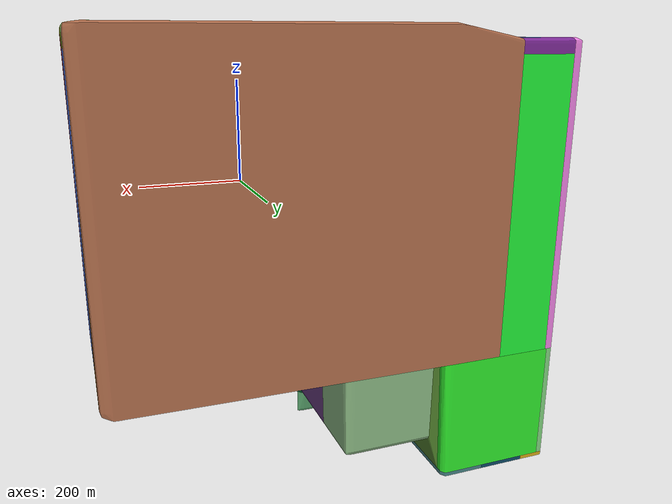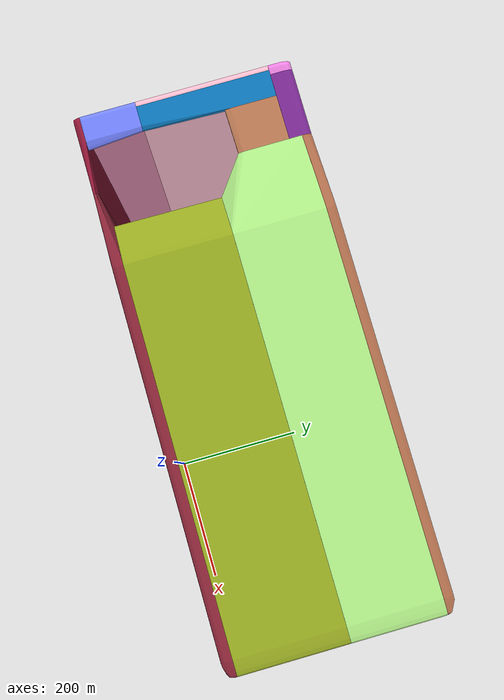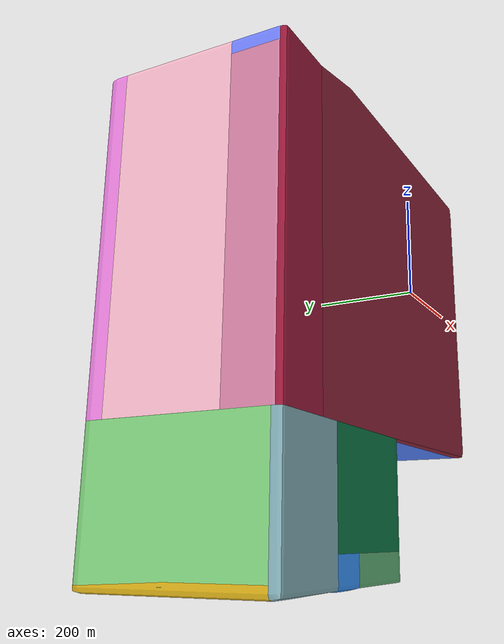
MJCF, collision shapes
<mujoco model="00259_Laboratory_no_subdiv">
  <default>
    <default class="visual">
      <geom group="2" type="mesh" contype="0" conaffinity="0"/>
    </default>
    <default class="collision">
      <geom group="3" type="mesh"/>
    </default>
  </default>
  <asset>
    <material name="wire_115115115" specular="0.3499999999999999" shininess="0.032" rgba="0.4510 0.4510 0.4510 1"/>
    <material name="wire_022022022" specular="0.3499999999999999" shininess="0.032" rgba="0.0863 0.0863 0.0863 1"/>
    <material name="wire_088199225" specular="0.3499999999999999" shininess="0.032" rgba="0.3451 0.7804 0.8824 1"/>
    <material name="wire_028089177" specular="0.3499999999999999" shininess="0.032" rgba="0.1098 0.3490 0.6941 1"/>
    <material name="wire_008008136" specular="0.3499999999999999" shininess="0.032" rgba="0.0314 0.0314 0.5333 1"/>
    <material name="wire_087225198" specular="0.3499999999999999" shininess="0.032" rgba="0.3412 0.8824 0.7765 1"/>
    <material name="wire_227153153" specular="0.3499999999999999" shininess="0.032" rgba="0.8902 0.6000 0.6000 1"/>
    <material name="wire_028028177" specular="0.3499999999999999" shininess="0.032" rgba="0.1098 0.1098 0.6941 1"/>
    <material name="wire_060135006" specular="0.3499999999999999" shininess="0.032" rgba="0.2353 0.5294 0.0235 1"/>
    <material name="wire_141007058" specular="0.3499999999999999" shininess="0.032" rgba="0.5529 0.0275 0.2275 1"/>
    <material name="wire_166229229" specular="0.3499999999999999" shininess="0.032" rgba="0.6510 0.8980 0.8980 1"/>
    <material name="wire_050062062" specular="0.3499999999999999" shininess="0.032" rgba="0.1961 0.2431 0.2431 1"/>
    <material name="wire_081072072" specular="0.3499999999999999" shininess="0.032" rgba="0.3176 0.2824 0.2824 1"/>
    <material name="wire_023020020" specular="0.3499999999999999" shininess="0.032" rgba="0.0902 0.0784 0.0784 1"/>
    <material name="wire_046043043" specular="0.3499999999999999" shininess="0.032" rgba="0.1804 0.1686 0.1686 1"/>
    <material name="wire_163105056" specular="0.3499999999999999" shininess="0.032" rgba="0.6392 0.4118 0.2196 1"/>
    <material name="wire_027177147" specular="0.3499999999999999" shininess="0.032" rgba="0.1059 0.6941 0.5765 1"/>
    <material name="wire_143225087" specular="0.3499999999999999" shininess="0.032" rgba="0.5608 0.8824 0.3412 1"/>
    <material name="wire_027177027" specular="0.3499999999999999" shininess="0.032" rgba="0.1059 0.6941 0.1059 1"/>
    <material name="wire_006135006" specular="0.3499999999999999" shininess="0.032" rgba="0.0235 0.5294 0.0235 1"/>
    <mesh file="00259_Laboratory_no_subdiv_0.obj"/>
    <mesh file="00259_Laboratory_no_subdiv_1.obj"/>
    <mesh file="00259_Laboratory_no_subdiv_2.obj"/>
    <mesh file="00259_Laboratory_no_subdiv_3.obj"/>
    <mesh file="00259_Laboratory_no_subdiv_4.obj"/>
    <mesh file="00259_Laboratory_no_subdiv_5.obj"/>
    <mesh file="00259_Laboratory_no_subdiv_6.obj"/>
    <mesh file="00259_Laboratory_no_subdiv_7.obj"/>
    <mesh file="00259_Laboratory_no_subdiv_8.obj"/>
    <mesh file="00259_Laboratory_no_subdiv_9.obj"/>
    <mesh file="00259_Laboratory_no_subdiv_10.obj"/>
    <mesh file="00259_Laboratory_no_subdiv_11.obj"/>
    <mesh file="00259_Laboratory_no_subdiv_12.obj"/>
    <mesh file="00259_Laboratory_no_subdiv_13.obj"/>
    <mesh file="00259_Laboratory_no_subdiv_14.obj"/>
    <mesh file="00259_Laboratory_no_subdiv_15.obj"/>
    <mesh file="00259_Laboratory_no_subdiv_16.obj"/>
    <mesh file="00259_Laboratory_no_subdiv_17.obj"/>
    <mesh file="00259_Laboratory_no_subdiv_18.obj"/>
    <mesh file="00259_Laboratory_no_subdiv_19.obj"/>
    <mesh file="00259_Laboratory_no_subdiv_collision_0.obj"/>
    <mesh file="00259_Laboratory_no_subdiv_collision_1.obj"/>
    <mesh file="00259_Laboratory_no_subdiv_collision_2.obj"/>
    <mesh file="00259_Laboratory_no_subdiv_collision_3.obj"/>
    <mesh file="00259_Laboratory_no_subdiv_collision_4.obj"/>
    <mesh file="00259_Laboratory_no_subdiv_collision_5.obj"/>
    <mesh file="00259_Laboratory_no_subdiv_collision_6.obj"/>
    <mesh file="00259_Laboratory_no_subdiv_collision_7.obj"/>
    <mesh file="00259_Laboratory_no_subdiv_collision_8.obj"/>
    <mesh file="00259_Laboratory_no_subdiv_collision_9.obj"/>
    <mesh file="00259_Laboratory_no_subdiv_collision_10.obj"/>
    <mesh file="00259_Laboratory_no_subdiv_collision_11.obj"/>
    <mesh file="00259_Laboratory_no_subdiv_collision_12.obj"/>
    <mesh file="00259_Laboratory_no_subdiv_collision_13.obj"/>
    <mesh file="00259_Laboratory_no_subdiv_collision_14.obj"/>
    <mesh file="00259_Laboratory_no_subdiv_collision_15.obj"/>
    <mesh file="00259_Laboratory_no_subdiv_collision_16.obj"/>
    <mesh file="00259_Laboratory_no_subdiv_collision_17.obj"/>
    <mesh file="00259_Laboratory_no_subdiv_collision_18.obj"/>
    <mesh file="00259_Laboratory_no_subdiv_collision_19.obj"/>
    <mesh file="00259_Laboratory_no_subdiv_collision_20.obj"/>
    <mesh file="00259_Laboratory_no_subdiv_collision_21.obj"/>
    <mesh file="00259_Laboratory_no_subdiv_collision_22.obj"/>
    <mesh file="00259_Laboratory_no_subdiv_collision_23.obj"/>
    <mesh file="00259_Laboratory_no_subdiv_collision_24.obj"/>
    <mesh file="00259_Laboratory_no_subdiv_collision_25.obj"/>
    <mesh file="00259_Laboratory_no_subdiv_collision_26.obj"/>
    <mesh file="00259_Laboratory_no_subdiv_collision_27.obj"/>
    <mesh file="00259_Laboratory_no_subdiv_collision_28.obj"/>
  </asset>
  <worldbody>
    <body name="00259_Laboratory_no_subdiv">
      <geom mesh="00259_Laboratory_no_subdiv_0" material="wire_006135006" class="visual"/>
      <geom mesh="00259_Laboratory_no_subdiv_1" material="wire_027177027" class="visual"/>
      <geom mesh="00259_Laboratory_no_subdiv_2" material="wire_143225087" class="visual"/>
      <geom mesh="00259_Laboratory_no_subdiv_3" material="wire_027177147" class="visual"/>
      <geom mesh="00259_Laboratory_no_subdiv_4" material="wire_163105056" class="visual"/>
      <geom mesh="00259_Laboratory_no_subdiv_5" material="wire_046043043" class="visual"/>
      <geom mesh="00259_Laboratory_no_subdiv_6" material="wire_023020020" class="visual"/>
      <geom mesh="00259_Laboratory_no_subdiv_7" material="wire_081072072" class="visual"/>
      <geom mesh="00259_Laboratory_no_subdiv_8" material="wire_050062062" class="visual"/>
      <geom mesh="00259_Laboratory_no_subdiv_9" material="wire_166229229" class="visual"/>
      <geom mesh="00259_Laboratory_no_subdiv_10" material="wire_141007058" class="visual"/>
      <geom mesh="00259_Laboratory_no_subdiv_11" material="wire_060135006" class="visual"/>
      <geom mesh="00259_Laboratory_no_subdiv_12" material="wire_028028177" class="visual"/>
      <geom mesh="00259_Laboratory_no_subdiv_13" material="wire_227153153" class="visual"/>
      <geom mesh="00259_Laboratory_no_subdiv_14" material="wire_087225198" class="visual"/>
      <geom mesh="00259_Laboratory_no_subdiv_15" material="wire_008008136" class="visual"/>
      <geom mesh="00259_Laboratory_no_subdiv_16" material="wire_028089177" class="visual"/>
      <geom mesh="00259_Laboratory_no_subdiv_17" material="wire_088199225" class="visual"/>
      <geom mesh="00259_Laboratory_no_subdiv_18" material="wire_022022022" class="visual"/>
      <geom mesh="00259_Laboratory_no_subdiv_19" material="wire_115115115" class="visual"/>
      <geom mesh="00259_Laboratory_no_subdiv_collision_0" rgba="0.483711950935506 0.6467891535552951 0.6773509191269865 1" class="collision"/>
      <geom mesh="00259_Laboratory_no_subdiv_collision_1" rgba="0.5394143094559884 0.7171230738936903 0.5086706708645925 1" class="collision"/>
      <geom mesh="00259_Laboratory_no_subdiv_collision_2" rgba="0.582516158640621 0.09502099292677413 0.22295940617521948 1" class="collision"/>
      <geom mesh="00259_Laboratory_no_subdiv_collision_3" rgba="0.6798854354427956 0.42068430231533205 0.28961254362256694 1" class="collision"/>
      <geom mesh="00259_Laboratory_no_subdiv_collision_4" rgba="0.5341470067226969 0.13838579460335665 0.21400370513005873 1" class="collision"/>
      <geom mesh="00259_Laboratory_no_subdiv_collision_5" rgba="0.05453230277663024 0.29039504796236215 0.3972366611006738 1" class="collision"/>
      <geom mesh="00259_Laboratory_no_subdiv_collision_6" rgba="0.17443359808722514 0.892905493072983 0.16478553211372526 1" class="collision"/>
      <geom mesh="00259_Laboratory_no_subdiv_collision_7" rgba="0.4866871279082877 0.8001624852048476 0.4770509196162751 1" class="collision"/>
      <geom mesh="00259_Laboratory_no_subdiv_collision_8" rgba="0.9105102415631575 0.4962936477659996 0.8664432545686702 1" class="collision"/>
      <geom mesh="00259_Laboratory_no_subdiv_collision_9" rgba="0.44146350596044026 0.506338950906841 0.9864930639271117 1" class="collision"/>
      <geom mesh="00259_Laboratory_no_subdiv_collision_10" rgba="0.8389407796002237 0.6729661793800095 0.09112464237540618 1" class="collision"/>
      <geom mesh="00259_Laboratory_no_subdiv_collision_11" rgba="0.8054779316268554 0.25904627413485204 0.9156096485040904 1" class="collision"/>
      <geom mesh="00259_Laboratory_no_subdiv_collision_12" rgba="0.04436292158943633 0.448628009489076 0.264672428753399 1" class="collision"/>
      <geom mesh="00259_Laboratory_no_subdiv_collision_13" rgba="0.3949034978194015 0.2228186576755793 0.497524452567646 1" class="collision"/>
      <geom mesh="00259_Laboratory_no_subdiv_collision_14" rgba="0.8134795247900817 0.49793645581268964 0.6325216600785998 1" class="collision"/>
      <geom mesh="00259_Laboratory_no_subdiv_collision_15" rgba="0.9501021603691734 0.715998307517916 0.781921871676976 1" class="collision"/>
      <geom mesh="00259_Laboratory_no_subdiv_collision_16" rgba="0.5808405444806156 0.6543361630723135 0.11975745985216912 1" class="collision"/>
      <geom mesh="00259_Laboratory_no_subdiv_collision_17" rgba="0.6747113957880436 0.9112552299044104 0.5159105361504707 1" class="collision"/>
      <geom mesh="00259_Laboratory_no_subdiv_collision_18" rgba="0.3185386163957077 0.49115921145071484 0.9556632098094267 1" class="collision"/>
      <geom mesh="00259_Laboratory_no_subdiv_collision_19" rgba="0.47949378472956794 0.3024307027624952 0.005330270720281249 1" class="collision"/>
      <geom mesh="00259_Laboratory_no_subdiv_collision_20" rgba="0.2707408624081894 0.5089730544887414 0.5137805720412109 1" class="collision"/>
      <geom mesh="00259_Laboratory_no_subdiv_collision_21" rgba="0.3576824489321907 0.6550721957138136 0.4358818997861611 1" class="collision"/>
      <geom mesh="00259_Laboratory_no_subdiv_collision_22" rgba="0.2064991102266437 0.5590365522455548 0.9390583125989105 1" class="collision"/>
      <geom mesh="00259_Laboratory_no_subdiv_collision_23" rgba="0.03976108196050043 0.46532510530834703 0.7306928478926911 1" class="collision"/>
      <geom mesh="00259_Laboratory_no_subdiv_collision_24" rgba="0.7282795655349033 0.4706714804918173 0.3271892984615987 1" class="collision"/>
      <geom mesh="00259_Laboratory_no_subdiv_collision_25" rgba="0.12860073415462858 0.9195704678370602 0.20989959646152678 1" class="collision"/>
      <geom mesh="00259_Laboratory_no_subdiv_collision_26" rgba="0.4788246566216632 0.15905993237363958 0.5784140365116529 1" class="collision"/>
      <geom mesh="00259_Laboratory_no_subdiv_collision_27" rgba="0.34317234477181136 0.539948690632874 0.18987812731268505 1" class="collision"/>
      <geom mesh="00259_Laboratory_no_subdiv_collision_28" rgba="0.6961282726132676 0.6704187487890182 0.18013277195266653 1" class="collision"/>
    </body>
  </worldbody>
</mujoco>
